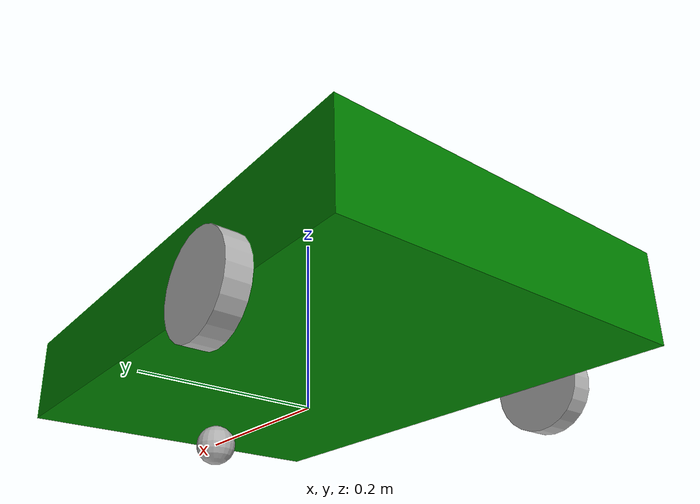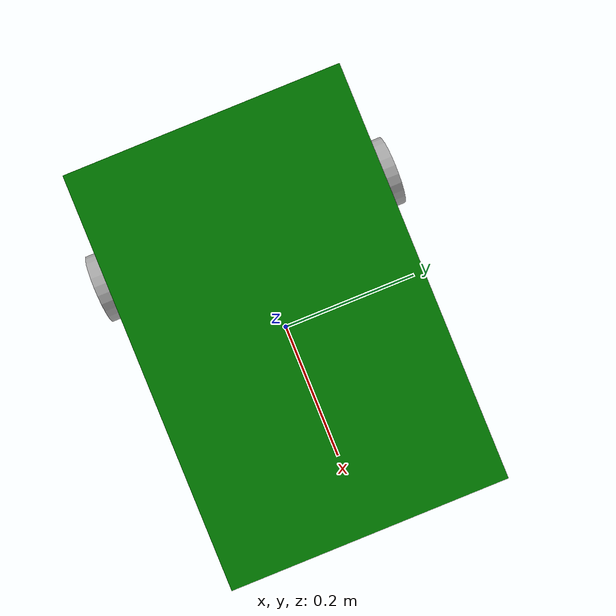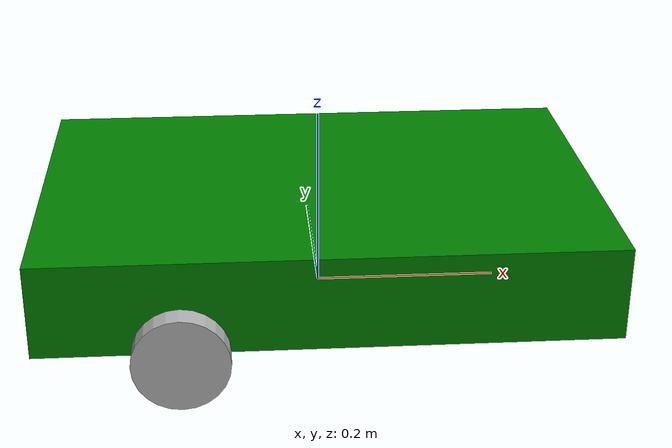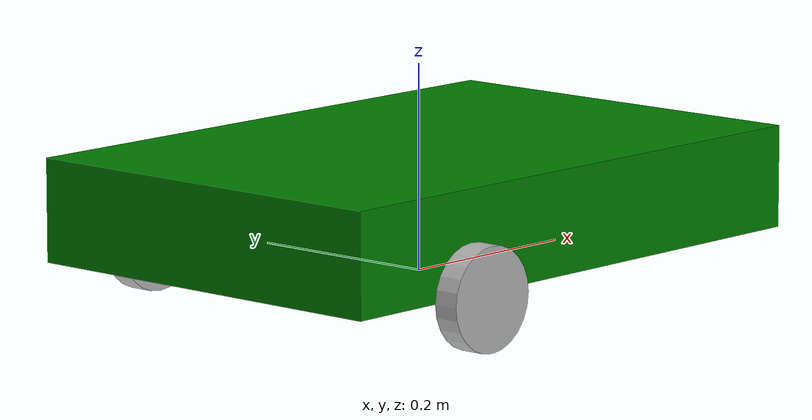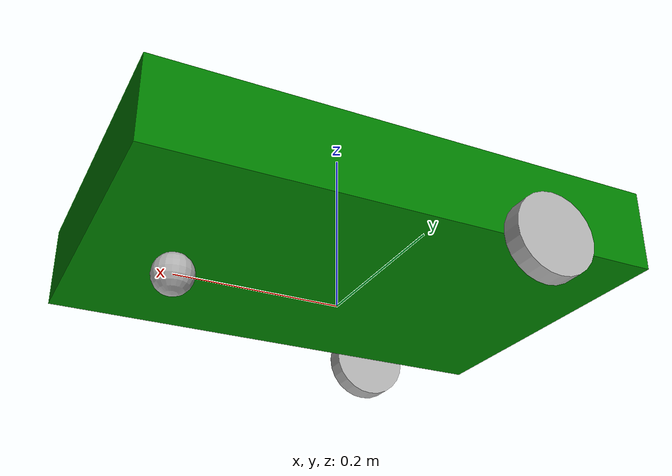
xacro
<?xml version="1.0"?>
<robot name="Line_Follower">

    <material name="Grey">
        <color rgba="0.7 0.7 0.7 1" />
    </material>

    <material name="Green">
        <color rgba="0 0.5 0 1" />
    </material>

    <link name="base_footprint" />

    <link name="base_link">
        <visual>
            <geometry>
                <box size="0.6 0.4 0.1" />
            </geometry>
            <origin xyz="0 0 0.05" rpy="0 0 0" />
            <material name="Green" />
        </visual>
        <collision>
            <origin xyz="0 0 0.05" rpy="0 0 0"/>
            <geometry>
                <box size="0.6 0.4 0.1"/>
            </geometry>
        </collision>
        <inertial>
            <origin xyz="0 0 0.05" rpy="0 0 0"/>
            <mass value="2.0"/>
            <inertia ixx="0.02" ixy="0.0" ixz="0.0" iyy="0.02" iyz="0.0" izz="0.02"/>
        </inertial>
    </link>

    <link name="Right_Wheel">
        <visual>
            <geometry>
                <cylinder length="0.025" radius="0.05" />
            </geometry>
            <origin xyz="0 0 0" rpy="0 0 0" />
            <material name="Grey" />
        </visual>
        <collision>
            <origin xyz="0 0 0" rpy="1.57 0 0"/>
            <geometry>
                <cylinder radius="0.05" length="0.05"/>
            </geometry>
        </collision>
        <inertial>
            <origin xyz="0 0 0" rpy="1.57 0 0"/>
            <mass value="0.2"/>
            <inertia ixx="0.001" ixy="0.0" ixz="0.0" iyy="0.001" iyz="0.0" izz="0.001"/>
        </inertial>
    </link>

    <link name="Left_Wheel">
        <visual>
            <geometry>
                <cylinder length="0.025" radius="0.05" />
            </geometry>
            <origin xyz="0 0 0" rpy="0 0 0" />
            <material name="Grey" />
        </visual>
        <collision>
            <origin xyz="0 0 0" rpy="1.57 0 0"/>
            <geometry>
                <cylinder radius="0.025" length="0.05"/>
            </geometry>
        </collision>
        <inertial>
            <origin xyz="0 0 0" rpy="1.57 0 0"/>
            <mass value="0.2"/>
            <inertia ixx="0.001" ixy="0.0" ixz="0.0" iyy="0.001" iyz="0.0" izz="0.001"/>
        </inertial>
    </link>

    <link name="castor_wheel">
        <visual>
            <geometry>
                <sphere radius="0.025" />
            </geometry>
            <material name="Grey" />
        </visual>
        <collision>
            <origin xyz="0 0 0" rpy="0 0 0"/>
            <geometry>
                <sphere radius="0.05"/>
            </geometry>
        </collision>
        <inertial>
            <origin xyz="0 0 0" rpy="0 0 0"/>
            <mass value="0.05"/>
            <inertia ixx="0.0001" ixy="0.0" ixz="0.0" iyy="0.0001" iyz="0.0" izz="0.0001"/>
        </inertial>
    </link>

    <joint name="base_joint" type="fixed">
        <parent link="base_footprint" />
        <child link="base_link" />
        <origin xyz = "0 0 0.025" rpy="0 0 0" />
    </joint>

    <joint name="Base_to_Right_Wheel" type="continuous">
        <parent link="base_link" />
        <child link="Right_Wheel" />
        <origin xyz="-0.15 0.2125 0" rpy="1.57 0 0" />
        <axis xyz="0 1 0" />
    </joint>

    <joint name="Base_to_left_Wheel" type="continuous">
        <parent link="base_link" />
        <child link="Left_Wheel" />
        <origin xyz="-0.15 -0.2125 0" rpy="1.57 0 0" />
        <axis xyz="0 1 0" />
    </joint>

    <joint name="base_castor_wheel_joint" type="fixed">
        <parent link="base_link" />
        <child link="castor_wheel" />
        <origin xyz="0.2 0 -0.025" rpy="0 0 0" />
    </joint>

</robot>
